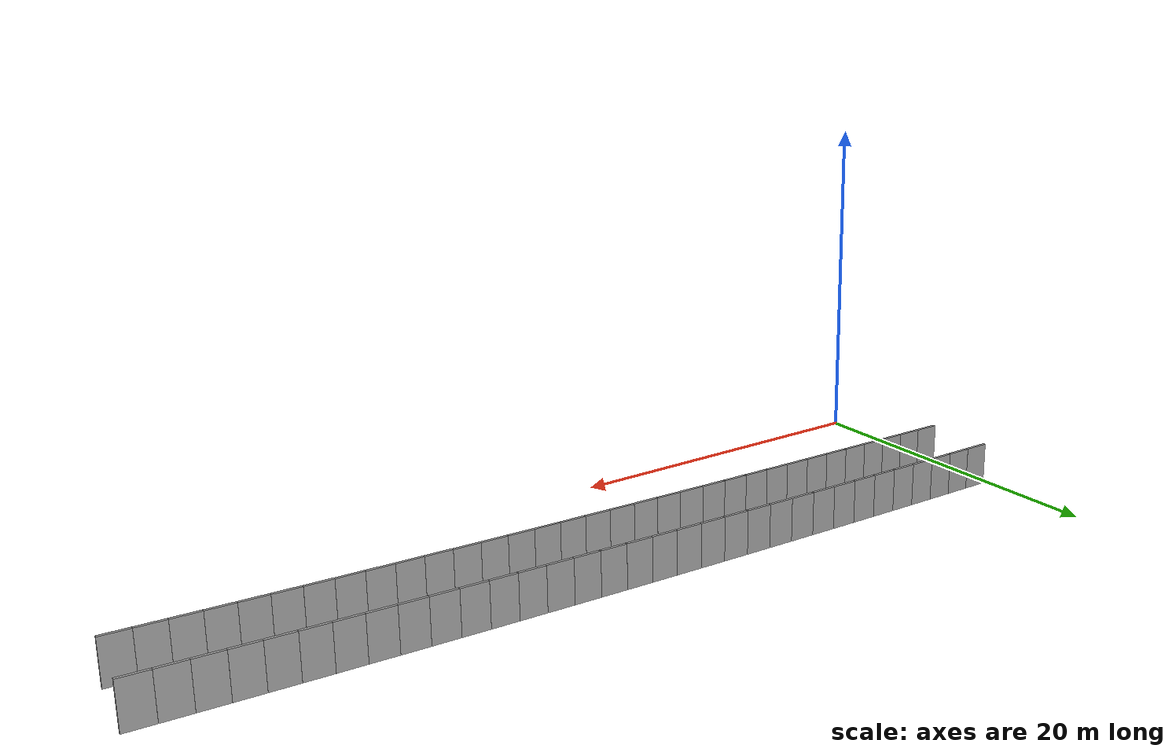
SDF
<?xml version="1.0" ?>
<sdf version="1.6">
  <model name="sps_2447">
    <pose frame="">0 0 0 0 -0 0</pose>
    <static>1</static>
    <self_collide>0</self_collide>
    <allow_auto_disable>0</allow_auto_disable>
    <link name="Wall2819">
      <kinematic>0</kinematic>
      <gravity>1</gravity>
      <self_collide>0</self_collide>
      <collision name="collision">
        <geometry>
          <box>
            <size>1.49651 0.15 2.5</size>
          </box>
        </geometry>
        <pose frame="">0 0 0 0 -0 0</pose>
      </collision>
      <visual name="visual">
        <geometry>
          <box>
            <size>1.49651 0.15 2.5</size>
          </box>
        </geometry>
        <pose frame="">0 0 0 0 -0 0</pose>
        <cast_shadows>1</cast_shadows>
        <transparency>0.0</transparency>
      </visual>
      <pose frame="">48.7968 6.97279 1.25 0 -0 3.07114</pose>
    </link>
    <link name="Wall2820">
      <kinematic>0</kinematic>
      <gravity>1</gravity>
      <self_collide>0</self_collide>
      <collision name="collision">
        <geometry>
          <box>
            <size>1.49653 0.15 2.5</size>
          </box>
        </geometry>
        <pose frame="">0 0 0 0 -0 0</pose>
      </collision>
      <visual name="visual">
        <geometry>
          <box>
            <size>1.49653 0.15 2.5</size>
          </box>
        </geometry>
        <pose frame="">0 0 0 0 -0 0</pose>
        <cast_shadows>1</cast_shadows>
        <transparency>0.0</transparency>
      </visual>
      <pose frame="">47.3039 7.07698 1.25 0 -0 3.07269</pose>
    </link>
    <link name="Wall2821">
      <kinematic>0</kinematic>
      <gravity>1</gravity>
      <self_collide>0</self_collide>
      <collision name="collision">
        <geometry>
          <box>
            <size>1.4966 0.15 2.5</size>
          </box>
        </geometry>
        <pose frame="">0 0 0 0 -0 0</pose>
      </collision>
      <visual name="visual">
        <geometry>
          <box>
            <size>1.4966 0.15 2.5</size>
          </box>
        </geometry>
        <pose frame="">0 0 0 0 -0 0</pose>
        <cast_shadows>1</cast_shadows>
        <transparency>0.0</transparency>
      </visual>
      <pose frame="">45.8108 7.17869 1.25 0 -0 3.07445</pose>
    </link>
    <link name="Wall2822">
      <kinematic>0</kinematic>
      <gravity>1</gravity>
      <self_collide>0</self_collide>
      <collision name="collision">
        <geometry>
          <box>
            <size>1.49639 0.15 2.5</size>
          </box>
        </geometry>
        <pose frame="">0 0 0 0 -0 0</pose>
      </collision>
      <visual name="visual">
        <geometry>
          <box>
            <size>1.49639 0.15 2.5</size>
          </box>
        </geometry>
        <pose frame="">0 0 0 0 -0 0</pose>
        <cast_shadows>1</cast_shadows>
        <transparency>0.0</transparency>
      </visual>
      <pose frame="">44.3176 7.278 1.25 0 -0 3.07592</pose>
    </link>
    <link name="Wall2823">
      <kinematic>0</kinematic>
      <gravity>1</gravity>
      <self_collide>0</self_collide>
      <collision name="collision">
        <geometry>
          <box>
            <size>1.49648 0.15 2.5</size>
          </box>
        </geometry>
        <pose frame="">0 0 0 0 -0 0</pose>
      </collision>
      <visual name="visual">
        <geometry>
          <box>
            <size>1.49648 0.15 2.5</size>
          </box>
        </geometry>
        <pose frame="">0 0 0 0 -0 0</pose>
        <cast_shadows>1</cast_shadows>
        <transparency>0.0</transparency>
      </visual>
      <pose frame="">42.8244 7.37498 1.25 0 -0 3.07756</pose>
    </link>
    <link name="Wall2824">
      <kinematic>0</kinematic>
      <gravity>1</gravity>
      <self_collide>0</self_collide>
      <collision name="collision">
        <geometry>
          <box>
            <size>1.49651 0.15 2.5</size>
          </box>
        </geometry>
        <pose frame="">0 0 0 0 -0 0</pose>
      </collision>
      <visual name="visual">
        <geometry>
          <box>
            <size>1.49651 0.15 2.5</size>
          </box>
        </geometry>
        <pose frame="">0 0 0 0 -0 0</pose>
        <cast_shadows>1</cast_shadows>
        <transparency>0.0</transparency>
      </visual>
      <pose frame="">41.3309 7.46959 1.25 0 -0 3.07911</pose>
    </link>
    <link name="Wall2825">
      <kinematic>0</kinematic>
      <gravity>1</gravity>
      <self_collide>0</self_collide>
      <collision name="collision">
        <geometry>
          <box>
            <size>1.4966 0.15 2.5</size>
          </box>
        </geometry>
        <pose frame="">0 0 0 0 -0 0</pose>
      </collision>
      <visual name="visual">
        <geometry>
          <box>
            <size>1.4966 0.15 2.5</size>
          </box>
        </geometry>
        <pose frame="">0 0 0 0 -0 0</pose>
        <cast_shadows>1</cast_shadows>
        <transparency>0.0</transparency>
      </visual>
      <pose frame="">39.8371 7.56181 1.25 0 -0 3.08075</pose>
    </link>
    <link name="Wall2826">
      <kinematic>0</kinematic>
      <gravity>1</gravity>
      <self_collide>0</self_collide>
      <collision name="collision">
        <geometry>
          <box>
            <size>1.4964 0.15 2.5</size>
          </box>
        </geometry>
        <pose frame="">0 0 0 0 -0 0</pose>
      </collision>
      <visual name="visual">
        <geometry>
          <box>
            <size>1.4964 0.15 2.5</size>
          </box>
        </geometry>
        <pose frame="">0 0 0 0 -0 0</pose>
        <cast_shadows>1</cast_shadows>
        <transparency>0.0</transparency>
      </visual>
      <pose frame="">38.3433 7.6516 1.25 0 -0 3.08237</pose>
    </link>
    <link name="Wall2827">
      <kinematic>0</kinematic>
      <gravity>1</gravity>
      <self_collide>0</self_collide>
      <collision name="collision">
        <geometry>
          <box>
            <size>1.49652 0.15 2.5</size>
          </box>
        </geometry>
        <pose frame="">0 0 0 0 -0 0</pose>
      </collision>
      <visual name="visual">
        <geometry>
          <box>
            <size>1.49652 0.15 2.5</size>
          </box>
        </geometry>
        <pose frame="">0 0 0 0 -0 0</pose>
        <cast_shadows>1</cast_shadows>
        <transparency>0.0</transparency>
      </visual>
      <pose frame="">36.8494 7.73909 1.25 0 -0 3.08381</pose>
    </link>
    <link name="Wall2828">
      <kinematic>0</kinematic>
      <gravity>1</gravity>
      <self_collide>0</self_collide>
      <collision name="collision">
        <geometry>
          <box>
            <size>1.49631 0.15 2.5</size>
          </box>
        </geometry>
        <pose frame="">0 0 0 0 -0 0</pose>
      </collision>
      <visual name="visual">
        <geometry>
          <box>
            <size>1.49631 0.15 2.5</size>
          </box>
        </geometry>
        <pose frame="">0 0 0 0 -0 0</pose>
        <cast_shadows>1</cast_shadows>
        <transparency>0.0</transparency>
      </visual>
      <pose frame="">35.3555 7.8242 1.25 0 -0 3.08556</pose>
    </link>
    <link name="Wall2829">
      <kinematic>0</kinematic>
      <gravity>1</gravity>
      <self_collide>0</self_collide>
      <collision name="collision">
        <geometry>
          <box>
            <size>1.49667 0.15 2.5</size>
          </box>
        </geometry>
        <pose frame="">0 0 0 0 -0 0</pose>
      </collision>
      <visual name="visual">
        <geometry>
          <box>
            <size>1.49667 0.15 2.5</size>
          </box>
        </geometry>
        <pose frame="">0 0 0 0 -0 0</pose>
        <cast_shadows>1</cast_shadows>
        <transparency>0.0</transparency>
      </visual>
      <pose frame="">33.8613 7.90691 1.25 0 -0 3.08704</pose>
    </link>
    <link name="Wall2830">
      <kinematic>0</kinematic>
      <gravity>1</gravity>
      <self_collide>0</self_collide>
      <collision name="collision">
        <geometry>
          <box>
            <size>1.49648 0.15 2.5</size>
          </box>
        </geometry>
        <pose frame="">0 0 0 0 -0 0</pose>
      </collision>
      <visual name="visual">
        <geometry>
          <box>
            <size>1.49648 0.15 2.5</size>
          </box>
        </geometry>
        <pose frame="">0 0 0 0 -0 0</pose>
        <cast_shadows>1</cast_shadows>
        <transparency>0.0</transparency>
      </visual>
      <pose frame="">32.3668 7.98729 1.25 0 -0 3.08867</pose>
    </link>
    <link name="Wall2831">
      <kinematic>0</kinematic>
      <gravity>1</gravity>
      <self_collide>0</self_collide>
      <collision name="collision">
        <geometry>
          <box>
            <size>1.49654 0.15 2.5</size>
          </box>
        </geometry>
        <pose frame="">0 0 0 0 -0 0</pose>
      </collision>
      <visual name="visual">
        <geometry>
          <box>
            <size>1.49654 0.15 2.5</size>
          </box>
        </geometry>
        <pose frame="">0 0 0 0 -0 0</pose>
        <cast_shadows>1</cast_shadows>
        <transparency>0.0</transparency>
      </visual>
      <pose frame="">30.8724 8.06529 1.25 0 -0 3.09022</pose>
    </link>
    <link name="Wall2832">
      <kinematic>0</kinematic>
      <gravity>1</gravity>
      <self_collide>0</self_collide>
      <collision name="collision">
        <geometry>
          <box>
            <size>1.49649 0.15 2.5</size>
          </box>
        </geometry>
        <pose frame="">0 0 0 0 -0 0</pose>
      </collision>
      <visual name="visual">
        <geometry>
          <box>
            <size>1.49649 0.15 2.5</size>
          </box>
        </geometry>
        <pose frame="">0 0 0 0 -0 0</pose>
        <cast_shadows>1</cast_shadows>
        <transparency>0.0</transparency>
      </visual>
      <pose frame="">29.3778 8.14101 1.25 0 -0 3.09173</pose>
    </link>
    <link name="Wall2833">
      <kinematic>0</kinematic>
      <gravity>1</gravity>
      <self_collide>0</self_collide>
      <collision name="collision">
        <geometry>
          <box>
            <size>1.49655 0.15 2.5</size>
          </box>
        </geometry>
        <pose frame="">0 0 0 0 -0 0</pose>
      </collision>
      <visual name="visual">
        <geometry>
          <box>
            <size>1.49655 0.15 2.5</size>
          </box>
        </geometry>
        <pose frame="">0 0 0 0 -0 0</pose>
        <cast_shadows>1</cast_shadows>
        <transparency>0.0</transparency>
      </visual>
      <pose frame="">27.883 8.21431 1.25 0 -0 3.09345</pose>
    </link>
    <link name="Wall2834">
      <kinematic>0</kinematic>
      <gravity>1</gravity>
      <self_collide>0</self_collide>
      <collision name="collision">
        <geometry>
          <box>
            <size>1.49644 0.15 2.5</size>
          </box>
        </geometry>
        <pose frame="">0 0 0 0 -0 0</pose>
      </collision>
      <visual name="visual">
        <geometry>
          <box>
            <size>1.49644 0.15 2.5</size>
          </box>
        </geometry>
        <pose frame="">0 0 0 0 -0 0</pose>
        <cast_shadows>1</cast_shadows>
        <transparency>0.0</transparency>
      </visual>
      <pose frame="">26.3882 8.2852 1.25 0 -0 3.09496</pose>
    </link>
    <link name="Wall2835">
      <kinematic>0</kinematic>
      <gravity>1</gravity>
      <self_collide>0</self_collide>
      <collision name="collision">
        <geometry>
          <box>
            <size>1.49651 0.15 2.5</size>
          </box>
        </geometry>
        <pose frame="">0 0 0 0 -0 0</pose>
      </collision>
      <visual name="visual">
        <geometry>
          <box>
            <size>1.49651 0.15 2.5</size>
          </box>
        </geometry>
        <pose frame="">0 0 0 0 -0 0</pose>
        <cast_shadows>1</cast_shadows>
        <transparency>0.0</transparency>
      </visual>
      <pose frame="">24.8933 8.35377 1.25 0 -0 3.09655</pose>
    </link>
    <link name="Wall2836">
      <kinematic>0</kinematic>
      <gravity>1</gravity>
      <self_collide>0</self_collide>
      <collision name="collision">
        <geometry>
          <box>
            <size>1.49658 0.15 2.5</size>
          </box>
        </geometry>
        <pose frame="">0 0 0 0 -0 0</pose>
      </collision>
      <visual name="visual">
        <geometry>
          <box>
            <size>1.49658 0.15 2.5</size>
          </box>
        </geometry>
        <pose frame="">0 0 0 0 -0 0</pose>
        <cast_shadows>1</cast_shadows>
        <transparency>0.0</transparency>
      </visual>
      <pose frame="">23.3982 8.41988 1.25 0 -0 3.09827</pose>
    </link>
    <link name="Wall2837">
      <kinematic>0</kinematic>
      <gravity>1</gravity>
      <self_collide>0</self_collide>
      <collision name="collision">
        <geometry>
          <box>
            <size>1.49649 0.15 2.5</size>
          </box>
        </geometry>
        <pose frame="">0 0 0 0 -0 0</pose>
      </collision>
      <visual name="visual">
        <geometry>
          <box>
            <size>1.49649 0.15 2.5</size>
          </box>
        </geometry>
        <pose frame="">0 0 0 0 -0 0</pose>
        <cast_shadows>1</cast_shadows>
        <transparency>0.0</transparency>
      </visual>
      <pose frame="">21.9031 8.4836 1.25 0 -0 3.09973</pose>
    </link>
    <link name="Wall2838">
      <kinematic>0</kinematic>
      <gravity>1</gravity>
      <self_collide>0</self_collide>
      <collision name="collision">
        <geometry>
          <box>
            <size>1.49645 0.15 2.5</size>
          </box>
        </geometry>
        <pose frame="">0 0 0 0 -0 0</pose>
      </collision>
      <visual name="visual">
        <geometry>
          <box>
            <size>1.49645 0.15 2.5</size>
          </box>
        </geometry>
        <pose frame="">0 0 0 0 -0 0</pose>
        <cast_shadows>1</cast_shadows>
        <transparency>0.0</transparency>
      </visual>
      <pose frame="">20.4079 8.545 1.25 0 -0 3.10137</pose>
    </link>
    <link name="Wall2839">
      <kinematic>0</kinematic>
      <gravity>1</gravity>
      <self_collide>0</self_collide>
      <collision name="collision">
        <geometry>
          <box>
            <size>1.49649 0.15 2.5</size>
          </box>
        </geometry>
        <pose frame="">0 0 0 0 -0 0</pose>
      </collision>
      <visual name="visual">
        <geometry>
          <box>
            <size>1.49649 0.15 2.5</size>
          </box>
        </geometry>
        <pose frame="">0 0 0 0 -0 0</pose>
        <cast_shadows>1</cast_shadows>
        <transparency>0.0</transparency>
      </visual>
      <pose frame="">18.9126 8.60408 1.25 0 -0 3.10284</pose>
    </link>
    <link name="Wall2840">
      <kinematic>0</kinematic>
      <gravity>1</gravity>
      <self_collide>0</self_collide>
      <collision name="collision">
        <geometry>
          <box>
            <size>1.49645 0.15 2.5</size>
          </box>
        </geometry>
        <pose frame="">0 0 0 0 -0 0</pose>
      </collision>
      <visual name="visual">
        <geometry>
          <box>
            <size>1.49645 0.15 2.5</size>
          </box>
        </geometry>
        <pose frame="">0 0 0 0 -0 0</pose>
        <cast_shadows>1</cast_shadows>
        <transparency>0.0</transparency>
      </visual>
      <pose frame="">17.4172 8.66078 1.25 0 -0 3.10455</pose>
    </link>
    <link name="Wall2841">
      <kinematic>0</kinematic>
      <gravity>1</gravity>
      <self_collide>0</self_collide>
      <collision name="collision">
        <geometry>
          <box>
            <size>1.49655 0.15 2.5</size>
          </box>
        </geometry>
        <pose frame="">0 0 0 0 -0 0</pose>
      </collision>
      <visual name="visual">
        <geometry>
          <box>
            <size>1.49655 0.15 2.5</size>
          </box>
        </geometry>
        <pose frame="">0 0 0 0 -0 0</pose>
        <cast_shadows>1</cast_shadows>
        <transparency>0.0</transparency>
      </visual>
      <pose frame="">15.9217 8.7151 1.25 0 -0 3.10602</pose>
    </link>
    <link name="Wall2842">
      <kinematic>0</kinematic>
      <gravity>1</gravity>
      <self_collide>0</self_collide>
      <collision name="collision">
        <geometry>
          <box>
            <size>1.49647 0.15 2.5</size>
          </box>
        </geometry>
        <pose frame="">0 0 0 0 -0 0</pose>
      </collision>
      <visual name="visual">
        <geometry>
          <box>
            <size>1.49647 0.15 2.5</size>
          </box>
        </geometry>
        <pose frame="">0 0 0 0 -0 0</pose>
        <cast_shadows>1</cast_shadows>
        <transparency>0.0</transparency>
      </visual>
      <pose frame="">14.426 8.7671 1.25 0 -0 3.10765</pose>
    </link>
    <link name="Wall2843">
      <kinematic>0</kinematic>
      <gravity>1</gravity>
      <self_collide>0</self_collide>
      <collision name="collision">
        <geometry>
          <box>
            <size>1.49657 0.15 2.5</size>
          </box>
        </geometry>
        <pose frame="">0 0 0 0 -0 0</pose>
      </collision>
      <visual name="visual">
        <geometry>
          <box>
            <size>1.49657 0.15 2.5</size>
          </box>
        </geometry>
        <pose frame="">0 0 0 0 -0 0</pose>
        <cast_shadows>1</cast_shadows>
        <transparency>0.0</transparency>
      </visual>
      <pose frame="">12.9304 8.8167 1.25 0 -0 3.10925</pose>
    </link>
    <link name="Wall2844">
      <kinematic>0</kinematic>
      <gravity>1</gravity>
      <self_collide>0</self_collide>
      <collision name="collision">
        <geometry>
          <box>
            <size>1.4965 0.15 2.5</size>
          </box>
        </geometry>
        <pose frame="">0 0 0 0 -0 0</pose>
      </collision>
      <visual name="visual">
        <geometry>
          <box>
            <size>1.4965 0.15 2.5</size>
          </box>
        </geometry>
        <pose frame="">0 0 0 0 -0 0</pose>
        <cast_shadows>1</cast_shadows>
        <transparency>0.0</transparency>
      </visual>
      <pose frame="">11.4346 8.86391 1.25 0 -0 3.11084</pose>
    </link>
    <link name="Wall2845">
      <kinematic>0</kinematic>
      <gravity>1</gravity>
      <self_collide>0</self_collide>
      <collision name="collision">
        <geometry>
          <box>
            <size>1.49642 0.15 2.5</size>
          </box>
        </geometry>
        <pose frame="">0 0 0 0 -0 0</pose>
      </collision>
      <visual name="visual">
        <geometry>
          <box>
            <size>1.49642 0.15 2.5</size>
          </box>
        </geometry>
        <pose frame="">0 0 0 0 -0 0</pose>
        <cast_shadows>1</cast_shadows>
        <transparency>0.0</transparency>
      </visual>
      <pose frame="">9.93877 8.90871 1.25 0 -0 3.11247</pose>
    </link>
    <link name="Wall2846">
      <kinematic>0</kinematic>
      <gravity>1</gravity>
      <self_collide>0</self_collide>
      <collision name="collision">
        <geometry>
          <box>
            <size>1.49642 0.15 2.5</size>
          </box>
        </geometry>
        <pose frame="">0 0 0 0 -0 0</pose>
      </collision>
      <visual name="visual">
        <geometry>
          <box>
            <size>1.49642 0.15 2.5</size>
          </box>
        </geometry>
        <pose frame="">0 0 0 0 -0 0</pose>
        <cast_shadows>1</cast_shadows>
        <transparency>0.0</transparency>
      </visual>
      <pose frame="">8.44295 8.95119 1.25 0 -0 3.11394</pose>
    </link>
    <link name="Wall2847">
      <kinematic>0</kinematic>
      <gravity>1</gravity>
      <self_collide>0</self_collide>
      <collision name="collision">
        <geometry>
          <box>
            <size>1.49666 0.15 2.5</size>
          </box>
        </geometry>
        <pose frame="">0 0 0 0 -0 0</pose>
      </collision>
      <visual name="visual">
        <geometry>
          <box>
            <size>1.49666 0.15 2.5</size>
          </box>
        </geometry>
        <pose frame="">0 0 0 0 -0 0</pose>
        <cast_shadows>1</cast_shadows>
        <transparency>0.0</transparency>
      </visual>
      <pose frame="">6.94695 8.99129 1.25 0 -0 3.11565</pose>
    </link>
    <link name="Wall2848">
      <kinematic>0</kinematic>
      <gravity>1</gravity>
      <self_collide>0</self_collide>
      <collision name="collision">
        <geometry>
          <box>
            <size>1.49648 0.15 2.5</size>
          </box>
        </geometry>
        <pose frame="">0 0 0 0 -0 0</pose>
      </collision>
      <visual name="visual">
        <geometry>
          <box>
            <size>1.49648 0.15 2.5</size>
          </box>
        </geometry>
        <pose frame="">0 0 0 0 -0 0</pose>
        <cast_shadows>1</cast_shadows>
        <transparency>0.0</transparency>
      </visual>
      <pose frame="">5.45086 9.02901 1.25 0 -0 3.11712</pose>
    </link>
    <link name="Wall2849">
      <kinematic>0</kinematic>
      <gravity>1</gravity>
      <self_collide>0</self_collide>
      <collision name="collision">
        <geometry>
          <box>
            <size>1.49636 0.15 2.5</size>
          </box>
        </geometry>
        <pose frame="">0 0 0 0 -0 0</pose>
      </collision>
      <visual name="visual">
        <geometry>
          <box>
            <size>1.49636 0.15 2.5</size>
          </box>
        </geometry>
        <pose frame="">0 0 0 0 -0 0</pose>
        <cast_shadows>1</cast_shadows>
        <transparency>0.0</transparency>
      </visual>
      <pose frame="">3.95486 9.06431 1.25 0 -0 3.11887</pose>
    </link>
    <link name="Wall2850">
      <kinematic>0</kinematic>
      <gravity>1</gravity>
      <self_collide>0</self_collide>
      <collision name="collision">
        <geometry>
          <box>
            <size>1.49656 0.15 2.5</size>
          </box>
        </geometry>
        <pose frame="">0 0 0 0 -0 0</pose>
      </collision>
      <visual name="visual">
        <geometry>
          <box>
            <size>1.49656 0.15 2.5</size>
          </box>
        </geometry>
        <pose frame="">0 0 0 0 -0 0</pose>
        <cast_shadows>1</cast_shadows>
        <transparency>0.0</transparency>
      </visual>
      <pose frame="">2.45876 9.0973 1.25 0 -0 3.12022</pose>
    </link>
    <link name="Wall2851">
      <kinematic>0</kinematic>
      <gravity>1</gravity>
      <self_collide>0</self_collide>
      <collision name="collision">
        <geometry>
          <box>
            <size>1.49651 0.15 2.5</size>
          </box>
        </geometry>
        <pose frame="">0 0 0 0 -0 0</pose>
      </collision>
      <visual name="visual">
        <geometry>
          <box>
            <size>1.49651 0.15 2.5</size>
          </box>
        </geometry>
        <pose frame="">0 0 0 0 -0 0</pose>
        <cast_shadows>1</cast_shadows>
        <transparency>0.0</transparency>
      </visual>
      <pose frame="">0.962547 9.128 1.25 0 -0 3.12193</pose>
    </link>
    <link name="Wall5430">
      <kinematic>0</kinematic>
      <gravity>1</gravity>
      <self_collide>0</self_collide>
      <collision name="collision">
        <geometry>
          <box>
            <size>1.50295 0.15 2.5</size>
          </box>
        </geometry>
        <pose frame="">0 0 0 0 -0 0</pose>
      </collision>
      <visual name="visual">
        <geometry>
          <box>
            <size>1.50295 0.15 2.5</size>
          </box>
        </geometry>
        <pose frame="">0 0 0 0 -0 0</pose>
        <cast_shadows>1</cast_shadows>
        <transparency>0.0</transparency>
      </visual>
      <pose frame="">49.0867 11.1023 1.25 0 -0 3.07099</pose>
    </link>
    <link name="Wall5431">
      <kinematic>0</kinematic>
      <gravity>1</gravity>
      <self_collide>0</self_collide>
      <collision name="collision">
        <geometry>
          <box>
            <size>1.50313 0.15 2.5</size>
          </box>
        </geometry>
        <pose frame="">0 0 0 0 -0 0</pose>
      </collision>
      <visual name="visual">
        <geometry>
          <box>
            <size>1.50313 0.15 2.5</size>
          </box>
        </geometry>
        <pose frame="">0 0 0 0 -0 0</pose>
        <cast_shadows>1</cast_shadows>
        <transparency>0.0</transparency>
      </visual>
      <pose frame="">47.5873 11.207 1.25 0 -0 3.07275</pose>
    </link>
    <link name="Wall5432">
      <kinematic>0</kinematic>
      <gravity>1</gravity>
      <self_collide>0</self_collide>
      <collision name="collision">
        <geometry>
          <box>
            <size>1.50302 0.15 2.5</size>
          </box>
        </geometry>
        <pose frame="">0 0 0 0 -0 0</pose>
      </collision>
      <visual name="visual">
        <geometry>
          <box>
            <size>1.50302 0.15 2.5</size>
          </box>
        </geometry>
        <pose frame="">0 0 0 0 -0 0</pose>
        <cast_shadows>1</cast_shadows>
        <transparency>0.0</transparency>
      </visual>
      <pose frame="">46.0877 11.3091 1.25 0 -0 3.07446</pose>
    </link>
    <link name="Wall5433">
      <kinematic>0</kinematic>
      <gravity>1</gravity>
      <self_collide>0</self_collide>
      <collision name="collision">
        <geometry>
          <box>
            <size>1.50305 0.15 2.5</size>
          </box>
        </geometry>
        <pose frame="">0 0 0 0 -0 0</pose>
      </collision>
      <visual name="visual">
        <geometry>
          <box>
            <size>1.50305 0.15 2.5</size>
          </box>
        </geometry>
        <pose frame="">0 0 0 0 -0 0</pose>
        <cast_shadows>1</cast_shadows>
        <transparency>0.0</transparency>
      </visual>
      <pose frame="">44.5879 11.4088 1.25 0 -0 3.07596</pose>
    </link>
    <link name="Wall5434">
      <kinematic>0</kinematic>
      <gravity>1</gravity>
      <self_collide>0</self_collide>
      <collision name="collision">
        <geometry>
          <box>
            <size>1.50308 0.15 2.5</size>
          </box>
        </geometry>
        <pose frame="">0 0 0 0 -0 0</pose>
      </collision>
      <visual name="visual">
        <geometry>
          <box>
            <size>1.50308 0.15 2.5</size>
          </box>
        </geometry>
        <pose frame="">0 0 0 0 -0 0</pose>
        <cast_shadows>1</cast_shadows>
        <transparency>0.0</transparency>
      </visual>
      <pose frame="">43.088 11.5062 1.25 0 -0 3.07755</pose>
    </link>
    <link name="Wall5435">
      <kinematic>0</kinematic>
      <gravity>1</gravity>
      <self_collide>0</self_collide>
      <collision name="collision">
        <geometry>
          <box>
            <size>1.5033 0.15 2.5</size>
          </box>
        </geometry>
        <pose frame="">0 0 0 0 -0 0</pose>
      </collision>
      <visual name="visual">
        <geometry>
          <box>
            <size>1.5033 0.15 2.5</size>
          </box>
        </geometry>
        <pose frame="">0 0 0 0 -0 0</pose>
        <cast_shadows>1</cast_shadows>
        <transparency>0.0</transparency>
      </visual>
      <pose frame="">41.5879 11.6012 1.25 0 -0 3.07915</pose>
    </link>
    <link name="Wall5436">
      <kinematic>0</kinematic>
      <gravity>1</gravity>
      <self_collide>0</self_collide>
      <collision name="collision">
        <geometry>
          <box>
            <size>1.50297 0.15 2.5</size>
          </box>
        </geometry>
        <pose frame="">0 0 0 0 -0 0</pose>
      </collision>
      <visual name="visual">
        <geometry>
          <box>
            <size>1.50297 0.15 2.5</size>
          </box>
        </geometry>
        <pose frame="">0 0 0 0 -0 0</pose>
        <cast_shadows>1</cast_shadows>
        <transparency>0.0</transparency>
      </visual>
      <pose frame="">40.0876 11.6938 1.25 0 -0 3.08072</pose>
    </link>
    <link name="Wall5437">
      <kinematic>0</kinematic>
      <gravity>1</gravity>
      <self_collide>0</self_collide>
      <collision name="collision">
        <geometry>
          <box>
            <size>1.50306 0.15 2.5</size>
          </box>
        </geometry>
        <pose frame="">0 0 0 0 -0 0</pose>
      </collision>
      <visual name="visual">
        <geometry>
          <box>
            <size>1.50306 0.15 2.5</size>
          </box>
        </geometry>
        <pose frame="">0 0 0 0 -0 0</pose>
        <cast_shadows>1</cast_shadows>
        <transparency>0.0</transparency>
      </visual>
      <pose frame="">38.5873 11.784 1.25 0 -0 3.08235</pose>
    </link>
    <link name="Wall5438">
      <kinematic>0</kinematic>
      <gravity>1</gravity>
      <self_collide>0</self_collide>
      <collision name="collision">
        <geometry>
          <box>
            <size>1.50311 0.15 2.5</size>
          </box>
        </geometry>
        <pose frame="">0 0 0 0 -0 0</pose>
      </collision>
      <visual name="visual">
        <geometry>
          <box>
            <size>1.50311 0.15 2.5</size>
          </box>
        </geometry>
        <pose frame="">0 0 0 0 -0 0</pose>
        <cast_shadows>1</cast_shadows>
        <transparency>0.0</transparency>
      </visual>
      <pose frame="">37.0868 11.8718 1.25 0 -0 3.08394</pose>
    </link>
    <link name="Wall5439">
      <kinematic>0</kinematic>
      <gravity>1</gravity>
      <self_collide>0</self_collide>
      <collision name="collision">
        <geometry>
          <box>
            <size>1.50316 0.15 2.5</size>
          </box>
        </geometry>
        <pose frame="">0 0 0 0 -0 0</pose>
      </collision>
      <visual name="visual">
        <geometry>
          <box>
            <size>1.50316 0.15 2.5</size>
          </box>
        </geometry>
        <pose frame="">0 0 0 0 -0 0</pose>
        <cast_shadows>1</cast_shadows>
        <transparency>0.0</transparency>
      </visual>
      <pose frame="">35.5861 11.9573 1.25 0 -0 3.08545</pose>
    </link>
    <link name="Wall5440">
      <kinematic>0</kinematic>
      <gravity>1</gravity>
      <self_collide>0</self_collide>
      <collision name="collision">
        <geometry>
          <box>
            <size>1.50302 0.15 2.5</size>
          </box>
        </geometry>
        <pose frame="">0 0 0 0 -0 0</pose>
      </collision>
      <visual name="visual">
        <geometry>
          <box>
            <size>1.50302 0.15 2.5</size>
          </box>
        </geometry>
        <pose frame="">0 0 0 0 -0 0</pose>
        <cast_shadows>1</cast_shadows>
        <transparency>0.0</transparency>
      </visual>
      <pose frame="">34.0853 12.0404 1.25 0 -0 3.08711</pose>
    </link>
    <link name="Wall5441">
      <kinematic>0</kinematic>
      <gravity>1</gravity>
      <self_collide>0</self_collide>
      <collision name="collision">
        <geometry>
          <box>
            <size>1.50309 0.15 2.5</size>
          </box>
        </geometry>
        <pose frame="">0 0 0 0 -0 0</pose>
      </collision>
      <visual name="visual">
        <geometry>
          <box>
            <size>1.50309 0.15 2.5</size>
          </box>
        </geometry>
        <pose frame="">0 0 0 0 -0 0</pose>
        <cast_shadows>1</cast_shadows>
        <transparency>0.0</transparency>
      </visual>
      <pose frame="">32.5844 12.1211 1.25 0 -0 3.08862</pose>
    </link>
    <link name="Wall5442">
      <kinematic>0</kinematic>
      <gravity>1</gravity>
      <self_collide>0</self_collide>
      <collision name="collision">
        <geometry>
          <box>
            <size>1.5032 0.15 2.5</size>
          </box>
        </geometry>
        <pose frame="">0 0 0 0 -0 0</pose>
      </collision>
      <visual name="visual">
        <geometry>
          <box>
            <size>1.5032 0.15 2.5</size>
          </box>
        </geometry>
        <pose frame="">0 0 0 0 -0 0</pose>
        <cast_shadows>1</cast_shadows>
        <transparency>0.0</transparency>
      </visual>
      <pose frame="">31.0833 12.1995 1.25 0 -0 3.09021</pose>
    </link>
    <link name="Wall5443">
      <kinematic>0</kinematic>
      <gravity>1</gravity>
      <self_collide>0</self_collide>
      <collision name="collision">
        <geometry>
          <box>
            <size>1.50308 0.15 2.5</size>
          </box>
        </geometry>
        <pose frame="">0 0 0 0 -0 0</pose>
      </collision>
      <visual name="visual">
        <geometry>
          <box>
            <size>1.50308 0.15 2.5</size>
          </box>
        </geometry>
        <pose frame="">0 0 0 0 -0 0</pose>
        <cast_shadows>1</cast_shadows>
        <transparency>0.0</transparency>
      </visual>
      <pose frame="">29.5821 12.2755 1.25 0 -0 3.09183</pose>
    </link>
    <link name="Wall5444">
      <kinematic>0</kinematic>
      <gravity>1</gravity>
      <self_collide>0</self_collide>
      <collision name="collision">
        <geometry>
          <box>
            <size>1.5029 0.15 2.5</size>
          </box>
        </geometry>
        <pose frame="">0 0 0 0 -0 0</pose>
      </collision>
      <visual name="visual">
        <geometry>
          <box>
            <size>1.5029 0.15 2.5</size>
          </box>
        </geometry>
        <pose frame="">0 0 0 0 -0 0</pose>
        <cast_shadows>1</cast_shadows>
        <transparency>0.0</transparency>
      </visual>
      <pose frame="">28.0809 12.3491 1.25 0 -0 3.09341</pose>
    </link>
    <link name="Wall5445">
      <kinematic>0</kinematic>
      <gravity>1</gravity>
      <self_collide>0</self_collide>
      <collision name="collision">
        <geometry>
          <box>
            <size>1.50304 0.15 2.5</size>
          </box>
        </geometry>
        <pose frame="">0 0 0 0 -0 0</pose>
      </collision>
      <visual name="visual">
        <geometry>
          <box>
            <size>1.50304 0.15 2.5</size>
          </box>
        </geometry>
        <pose frame="">0 0 0 0 -0 0</pose>
        <cast_shadows>1</cast_shadows>
        <transparency>0.0</transparency>
      </visual>
      <pose frame="">26.5796 12.4203 1.25 0 -0 3.095</pose>
    </link>
    <link name="Wall5446">
      <kinematic>0</kinematic>
      <gravity>1</gravity>
      <self_collide>0</self_collide>
      <collision name="collision">
        <geometry>
          <box>
            <size>1.50318 0.15 2.5</size>
          </box>
        </geometry>
        <pose frame="">0 0 0 0 -0 0</pose>
      </collision>
      <visual name="visual">
        <geometry>
          <box>
            <size>1.50318 0.15 2.5</size>
          </box>
        </geometry>
        <pose frame="">0 0 0 0 -0 0</pose>
        <cast_shadows>1</cast_shadows>
        <transparency>0.0</transparency>
      </visual>
      <pose frame="">25.0781 12.4892 1.25 0 -0 3.09647</pose>
    </link>
    <link name="Wall5447">
      <kinematic>0</kinematic>
      <gravity>1</gravity>
      <self_collide>0</self_collide>
      <collision name="collision">
        <geometry>
          <box>
            <size>1.50318 0.15 2.5</size>
          </box>
        </geometry>
        <pose frame="">0 0 0 0 -0 0</pose>
      </collision>
      <visual name="visual">
        <geometry>
          <box>
            <size>1.50318 0.15 2.5</size>
          </box>
        </geometry>
        <pose frame="">0 0 0 0 -0 0</pose>
        <cast_shadows>1</cast_shadows>
        <transparency>0.0</transparency>
      </visual>
      <pose frame="">23.5763 12.5557 1.25 0 -0 3.09821</pose>
    </link>
    <link name="Wall5448">
      <kinematic>0</kinematic>
      <gravity>1</gravity>
      <self_collide>0</self_collide>
      <collision name="collision">
        <geometry>
          <box>
            <size>1.50314 0.15 2.5</size>
          </box>
        </geometry>
        <pose frame="">0 0 0 0 -0 0</pose>
      </collision>
      <visual name="visual">
        <geometry>
          <box>
            <size>1.50314 0.15 2.5</size>
          </box>
        </geometry>
        <pose frame="">0 0 0 0 -0 0</pose>
        <cast_shadows>1</cast_shadows>
        <transparency>0.0</transparency>
      </visual>
      <pose frame="">22.0745 12.6197 1.25 0 -0 3.0998</pose>
    </link>
    <link name="Wall5449">
      <kinematic>0</kinematic>
      <gravity>1</gravity>
      <self_collide>0</self_collide>
      <collision name="collision">
        <geometry>
          <box>
            <size>1.50299 0.15 2.5</size>
          </box>
        </geometry>
        <pose frame="">0 0 0 0 -0 0</pose>
      </collision>
      <visual name="visual">
        <geometry>
          <box>
            <size>1.50299 0.15 2.5</size>
          </box>
        </geometry>
        <pose frame="">0 0 0 0 -0 0</pose>
        <cast_shadows>1</cast_shadows>
        <transparency>0.0</transparency>
      </visual>
      <pose frame="">20.5727 12.6814 1.25 0 -0 3.10126</pose>
    </link>
    <link name="Wall5450">
      <kinematic>0</kinematic>
      <gravity>1</gravity>
      <self_collide>0</self_collide>
      <collision name="collision">
        <geometry>
          <box>
            <size>1.50295 0.15 2.5</size>
          </box>
        </geometry>
        <pose frame="">0 0 0 0 -0 0</pose>
      </collision>
      <visual name="visual">
        <geometry>
          <box>
            <size>1.50295 0.15 2.5</size>
          </box>
        </geometry>
        <pose frame="">0 0 0 0 -0 0</pose>
        <cast_shadows>1</cast_shadows>
        <transparency>0.0</transparency>
      </visual>
      <pose frame="">19.0709 12.7407 1.25 0 -0 3.103</pose>
    </link>
    <link name="Wall5451">
      <kinematic>0</kinematic>
      <gravity>1</gravity>
      <self_collide>0</self_collide>
      <collision name="collision">
        <geometry>
          <box>
            <size>1.50299 0.15 2.5</size>
          </box>
        </geometry>
        <pose frame="">0 0 0 0 -0 0</pose>
      </collision>
      <visual name="visual">
        <geometry>
          <box>
            <size>1.50299 0.15 2.5</size>
          </box>
        </geometry>
        <pose frame="">0 0 0 0 -0 0</pose>
        <cast_shadows>1</cast_shadows>
        <transparency>0.0</transparency>
      </visual>
      <pose frame="">17.5691 12.7976 1.25 0 -0 3.10443</pose>
    </link>
    <link name="Wall5452">
      <kinematic>0</kinematic>
      <gravity>1</gravity>
      <self_collide>0</self_collide>
      <collision name="collision">
        <geometry>
          <box>
            <size>1.50315 0.15 2.5</size>
          </box>
        </geometry>
        <pose frame="">0 0 0 0 -0 0</pose>
      </collision>
      <visual name="visual">
        <geometry>
          <box>
            <size>1.50315 0.15 2.5</size>
          </box>
        </geometry>
        <pose frame="">0 0 0 0 -0 0</pose>
        <cast_shadows>1</cast_shadows>
        <transparency>0.0</transparency>
      </visual>
      <pose frame="">16.067 12.8522 1.25 0 -0 3.10606</pose>
    </link>
    <link name="Wall5453">
      <kinematic>0</kinematic>
      <gravity>1</gravity>
      <self_collide>0</self_collide>
      <collision name="collision">
        <geometry>
          <box>
            <size>1.50331 0.15 2.5</size>
          </box>
        </geometry>
        <pose frame="">0 0 0 0 -0 0</pose>
      </collision>
      <visual name="visual">
        <geometry>
          <box>
            <size>1.50331 0.15 2.5</size>
          </box>
        </geometry>
        <pose frame="">0 0 0 0 -0 0</pose>
        <cast_shadows>1</cast_shadows>
        <transparency>0.0</transparency>
      </visual>
      <pose frame="">14.5647 12.9044 1.25 0 -0 3.10768</pose>
    </link>
    <link name="Wall5454">
      <kinematic>0</kinematic>
      <gravity>1</gravity>
      <self_collide>0</self_collide>
      <collision name="collision">
        <geometry>
          <box>
            <size>1.50298 0.15 2.5</size>
          </box>
        </geometry>
        <pose frame="">0 0 0 0 -0 0</pose>
      </collision>
      <visual name="visual">
        <geometry>
          <box>
            <size>1.50298 0.15 2.5</size>
          </box>
        </geometry>
        <pose frame="">0 0 0 0 -0 0</pose>
        <cast_shadows>1</cast_shadows>
        <transparency>0.0</transparency>
      </visual>
      <pose frame="">13.0623 12.9542 1.25 0 -0 3.10926</pose>
    </link>
    <link name="Wall5455">
      <kinematic>0</kinematic>
      <gravity>1</gravity>
      <self_collide>0</self_collide>
      <collision name="collision">
        <geometry>
          <box>
            <size>1.50309 0.15 2.5</size>
          </box>
        </geometry>
        <pose frame="">0 0 0 0 -0 0</pose>
      </collision>
      <visual name="visual">
        <geometry>
          <box>
            <size>1.50309 0.15 2.5</size>
          </box>
        </geometry>
        <pose frame="">0 0 0 0 -0 0</pose>
        <cast_shadows>1</cast_shadows>
        <transparency>0.0</transparency>
      </visual>
      <pose frame="">11.5601 13.0016 1.25 0 -0 3.11085</pose>
    </link>
    <link name="Wall5456">
      <kinematic>0</kinematic>
      <gravity>1</gravity>
      <self_collide>0</self_collide>
      <collision name="collision">
        <geometry>
          <box>
            <size>1.50302 0.15 2.5</size>
          </box>
        </geometry>
        <pose frame="">0 0 0 0 -0 0</pose>
      </collision>
      <visual name="visual">
        <geometry>
          <box>
            <size>1.50302 0.15 2.5</size>
          </box>
        </geometry>
        <pose frame="">0 0 0 0 -0 0</pose>
        <cast_shadows>1</cast_shadows>
        <transparency>0.0</transparency>
      </visual>
      <pose frame="">10.0577 13.0466 1.25 0 -0 3.11243</pose>
    </link>
    <link name="Wall5457">
      <kinematic>0</kinematic>
      <gravity>1</gravity>
      <self_collide>0</self_collide>
      <collision name="collision">
        <geometry>
          <box>
            <size>1.50319 0.15 2.5</size>
          </box>
        </geometry>
        <pose frame="">0 0 0 0 -0 0</pose>
      </collision>
      <visual name="visual">
        <geometry>
          <box>
            <size>1.50319 0.15 2.5</size>
          </box>
        </geometry>
        <pose frame="">0 0 0 0 -0 0</pose>
        <cast_shadows>1</cast_shadows>
        <transparency>0.0</transparency>
      </visual>
      <pose frame="">8.55517 13.0892 1.25 0 -0 3.11406</pose>
    </link>
    <link name="Wall5458">
      <kinematic>0</kinematic>
      <gravity>1</gravity>
      <self_collide>0</self_collide>
      <collision name="collision">
        <geometry>
          <box>
            <size>1.50314 0.15 2.5</size>
          </box>
        </geometry>
        <pose frame="">0 0 0 0 -0 0</pose>
      </collision>
      <visual name="visual">
        <geometry>
          <box>
            <size>1.50314 0.15 2.5</size>
          </box>
        </geometry>
        <pose frame="">0 0 0 0 -0 0</pose>
        <cast_shadows>1</cast_shadows>
        <transparency>0.0</transparency>
      </visual>
      <pose frame="">7.05254 13.1295 1.25 0 -0 3.11548</pose>
    </link>
    <link name="Wall5459">
      <kinematic>0</kinematic>
      <gravity>1</gravity>
      <self_collide>0</self_collide>
      <collision name="collision">
        <geometry>
          <box>
            <size>1.50301 0.15 2.5</size>
          </box>
        </geometry>
        <pose frame="">0 0 0 0 -0 0</pose>
      </collision>
      <visual name="visual">
        <geometry>
          <box>
            <size>1.50301 0.15 2.5</size>
          </box>
        </geometry>
        <pose frame="">0 0 0 0 -0 0</pose>
        <cast_shadows>1</cast_shadows>
        <transparency>0.0</transparency>
      </visual>
      <pose frame="">5.54995 13.1674 1.25 0 -0 3.11727</pose>
    </link>
    <link name="Wall5460">
      <kinematic>0</kinematic>
      <gravity>1</gravity>
      <self_collide>0</self_collide>
      <collision name="collision">
        <geometry>
          <box>
            <size>1.5032 0.15 2.5</size>
          </box>
        </geometry>
        <pose frame="">0 0 0 0 -0 0</pose>
      </collision>
      <visual name="visual">
        <geometry>
          <box>
            <size>1.5032 0.15 2.5</size>
          </box>
        </geometry>
        <pose frame="">0 0 0 0 -0 0</pose>
        <cast_shadows>1</cast_shadows>
        <transparency>0.0</transparency>
      </visual>
      <pose frame="">4.04726 13.2029 1.25 0 -0 3.11869</pose>
    </link>
    <link name="Wall5461">
      <kinematic>0</kinematic>
      <gravity>1</gravity>
      <self_collide>0</self_collide>
      <collision name="collision">
        <geometry>
          <box>
            <size>1.50296 0.15 2.5</size>
          </box>
        </geometry>
        <pose frame="">0 0 0 0 -0 0</pose>
      </collision>
      <visual name="visual">
        <geometry>
          <box>
            <size>1.50296 0.15 2.5</size>
          </box>
        </geometry>
        <pose frame="">0 0 0 0 -0 0</pose>
        <cast_shadows>1</cast_shadows>
        <transparency>0.0</transparency>
      </visual>
      <pose frame="">2.54455 13.2361 1.25 0 -0 3.12031</pose>
    </link>
    <link name="Wall5462">
      <kinematic>0</kinematic>
      <gravity>1</gravity>
      <self_collide>0</self_collide>
      <collision name="collision">
        <geometry>
          <box>
            <size>1.50328 0.15 2.5</size>
          </box>
        </geometry>
        <pose frame="">0 0 0 0 -0 0</pose>
      </collision>
      <visual name="visual">
        <geometry>
          <box>
            <size>1.50328 0.15 2.5</size>
          </box>
        </geometry>
        <pose frame="">0 0 0 0 -0 0</pose>
        <cast_shadows>1</cast_shadows>
        <transparency>0.0</transparency>
      </visual>
      <pose frame="">1.04174 13.2668 1.25 0 -0 3.12202</pose>
    </link>
  </model>
</sdf>
